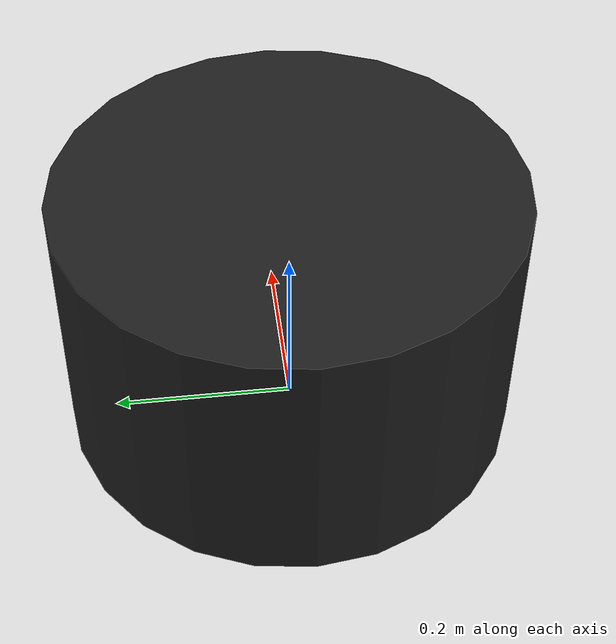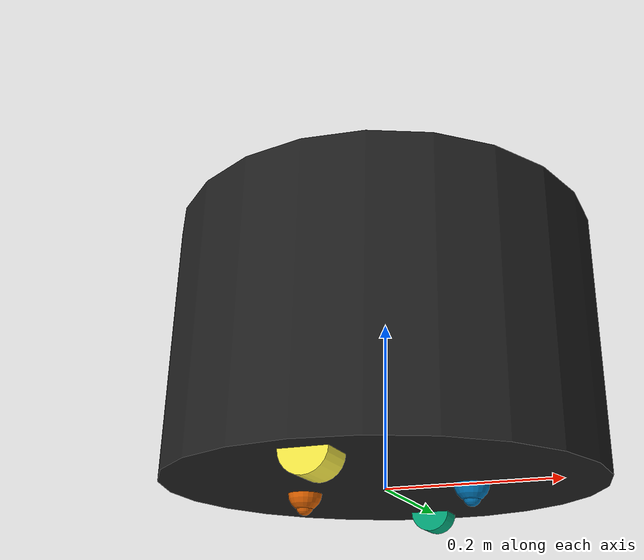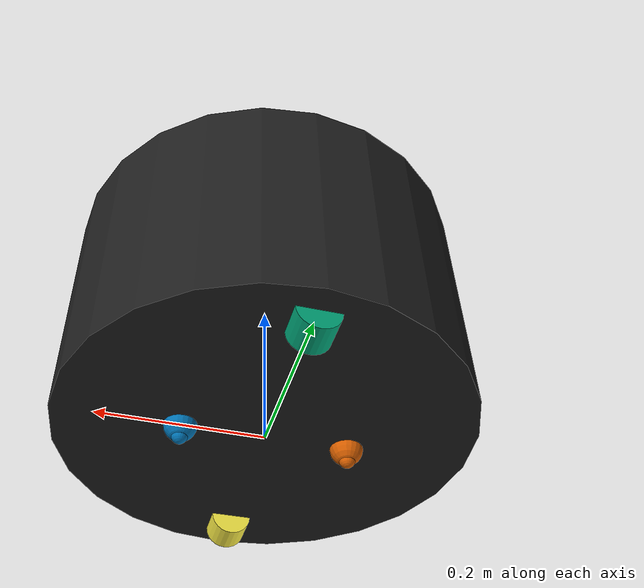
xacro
<?xml version="1.0" ?>
<robot name="robot"  xmlns:xacro="http://www.ros.org/wiki/xacro">

    <!-- Custom properties -->
        <xacro:include filename="$(find my_rb1_description)/urdf/my_rb1_robot.gazebo" />

        <xacro:property name="base_mass" value="23" />
        <xacro:property name="default_mass" value="1" />

        <xacro:property name="pi" value="3.1415926535897931" />
        <xacro:property name="h_pi" value="${pi / 2}" />

    <!-- Base -->
        <!-- Base footprint -->
        <link name="base_footprint">
        </link>

        <!-- Link - base -->
        <link name="base_link">
            <inertial>
                <mass value="${base_mass}" />
                <origin xyz="0 0 0" rpy="0 0 0" />
                <inertia ixx="0.5319" iyy="0.5319" izz="0.7188" ixy="0" ixz="0" iyz="0" />
            </inertial>

            <collision>
                <geometry>
                    <cylinder length="0.3" radius="0.25"/>
                </geometry>
            </collision>

            <visual>
                <geometry>
                    <cylinder length="0.3" radius="0.25"/>
                </geometry>
            </visual>
        </link>

        <!-- Joint - base - base footprint -->
        <joint name="joint_base_to_base_footprint" type="fixed">
            <origin rpy="0 0 0" xyz="0 0 0.15" />
            <parent link="base_footprint" />
            <child link="base_link" />
        </joint>

    <!-- Wheels -->
        <!-- Link - left wheel -->
        <link name="left_wheel">
            <inertial>
                <mass value="${default_mass}" />
                <origin xyz="0 0 0" rpy="0 0 0" />
                <inertia ixx="0.0001896" iyy="0.0001896" izz="0.0003125" ixy="0" ixz="0" iyz="0" />
            </inertial>

            <collision>
                <origin rpy="${h_pi} 0 0" xyz="0 0 0" />
                <geometry>
                    <cylinder length="0.04" radius="0.025"/>
                </geometry>
            </collision>
            <visual>
                <origin rpy="${h_pi} 0 0" xyz="0 0 0" />
                <geometry>
                    <cylinder length="0.04" radius="0.025"/>
                </geometry>
            </visual>
        </link>

        <!-- Joint - left wheel to base -->
        <joint name="joint_left_wheel_to_base" type="continuous">
            <origin rpy="0 0 0" xyz="0 0.2 -0.15" />
            <parent link="base_link" />
            <child link="left_wheel" />
            <axis rpy="0 0 0" xyz="0 1 0" />
            <limit effort="10000" velocity="1000" />
            <joint_properties damping="1.0" friction="1.0" />
        </joint>

        <!-- Link - right wheel -->
        <link name="right_wheel">
            <inertial>
                <mass value="${default_mass}" />
                <origin xyz="0 0 0" rpy="0 0 0" />
                <inertia ixx="0.0001896" iyy="0.0001896" izz="0.0003125" ixy="0" ixz="0" iyz="0" />
            </inertial>

            <collision>
                <origin rpy="${h_pi} 0 0" xyz="0 0 0" />
                <geometry>
                    <cylinder length="0.04" radius="0.025"/>
                </geometry>
            </collision>
            <visual>
                <origin rpy="${h_pi} 0 0" xyz="0 0 0" />
                <geometry>
                    <cylinder length="0.04" radius="0.025"/>
                </geometry>
            </visual>
        </link>

        <!-- Joint - right wheel - base -->
        <joint name="joint_right_wheel_to_base" type="continuous">
            <origin rpy="0 0 0" xyz="0 -0.2 -0.15" />
            <child link="right_wheel" />
            <parent link="base_link" />
            <axis rpy="0 0 0" xyz="0 1 0" />
            <limit effort="10000" velocity="1000" />
            <joint_properties damping="1.0" friction="1.0" />
        </joint>

    <!-- Caster wheels -->
        <!-- Link - front caster wheel -->
        <link name="front_caster">
            <inertial>
                <mass value="${default_mass}" />
                <origin xyz="0 0 0" rpy="0 0 0" />
                <inertia ixx="0.00026667" ixy="0.00026667" izz="0.00026667" ixz="0" iyy="0.002526666666667" iyz="0" />
            </inertial>

            <collision>
                <origin rpy="0 0 0" xyz="0 0 0" />
                <geometry>
                    <sphere radius="0.02"/>
                </geometry>
            </collision>
            <visual>
                <origin rpy="0 0 0" xyz="0 0 0" />
                <geometry>
                    <sphere radius="0.02"/>
                </geometry>
            </visual>

            <collision>
                <origin rpy="0 0 0" xyz="0 0 -0.015" />
                <geometry>
                    <sphere radius="0.01"/>
                </geometry>
            </collision>
            <visual>
                <origin rpy="0 0 0" xyz="0 0 -0.015" />
                <geometry>
                    <sphere radius="0.01"/>
                </geometry>
            </visual>
        </link>

        <!-- Joint - front caster to base -->
        <joint name="joint_front_caster_to_base" type="fixed">
            <origin rpy="0 0 0" xyz="0.1 0 -0.15" />
            <child link="front_caster" />
            <parent link="base_link" />
        </joint>

        <!-- Link - back caster wheel -->
        <link name="back_caster">
            <inertial>
                <mass value="${default_mass}" />
                <origin xyz="0 0 0" rpy="0 0 0" />
                <inertia ixx="0.00026667" ixy="0.00026667" izz="0.00026667" ixz="0" iyy="0.002526666666667" iyz="0" />
            </inertial>

            <collision>
                <origin rpy="0 0 0" xyz="0 0 0" />
                <geometry>
                    <sphere radius="0.02"/>
                </geometry>
            </collision>
            <visual>
                <origin rpy="0 0 0" xyz="0 0 0" />
                <geometry>
                    <sphere radius="0.02"/>
                </geometry>
            </visual>

            <collision>
                <origin rpy="0 0 0" xyz="0 0 -0.015" />
                <geometry>
                    <sphere radius="0.01"/>
                </geometry>
            </collision>
            <visual>
                <origin rpy="0 0 0" xyz="0 0 -0.015" />
                <geometry>
                    <sphere radius="0.01"/>
                </geometry>
            </visual>
        </link>

        <!-- Joint - back caster - base -->
        <joint name="joint_back_caster_to_base" type="fixed">
            <origin rpy="0 0 0" xyz="-0.1 0 -0.15" />
            <child link="back_caster" />
            <parent link="base_link" />
        </joint>

    <!-- Sensors -->
            <!-- Link - front laser -->
        <link name="front_laser">
        </link>

        <!-- Joint - front laser - base -->
        <joint name="joint_front_laser_to_base" type="fixed">
            <origin rpy="${pi} 0 0" xyz="0.25 0 0.075" />
            <child link="front_laser" />
            <parent link="base_link" />
        </joint>

</robot>
